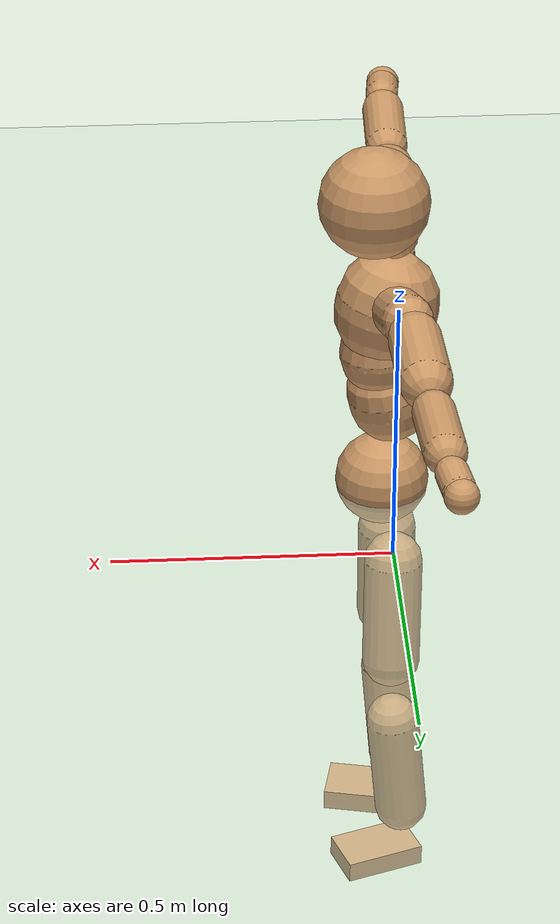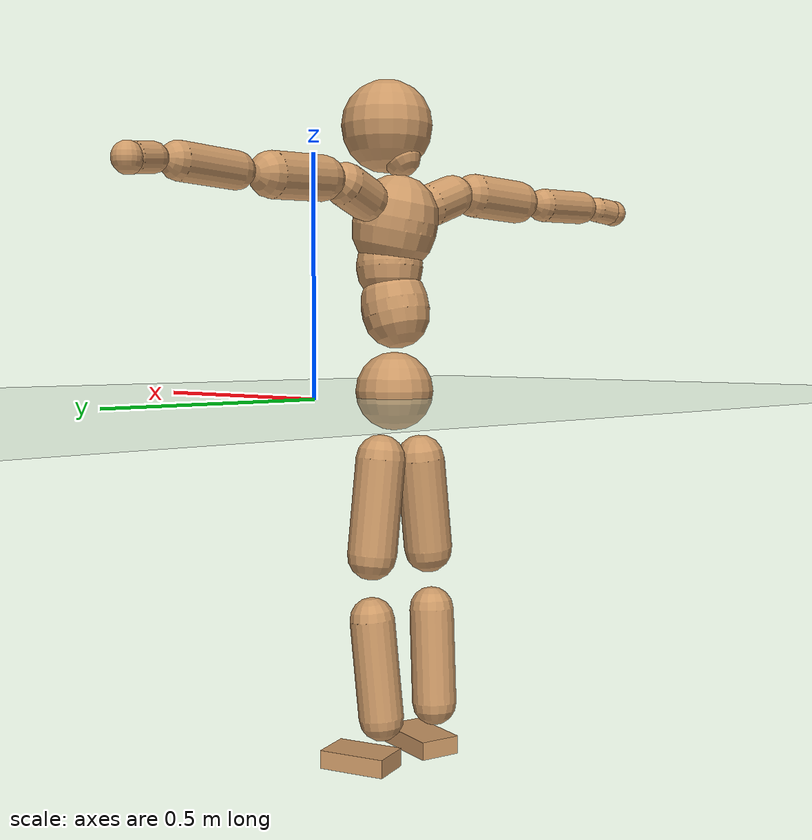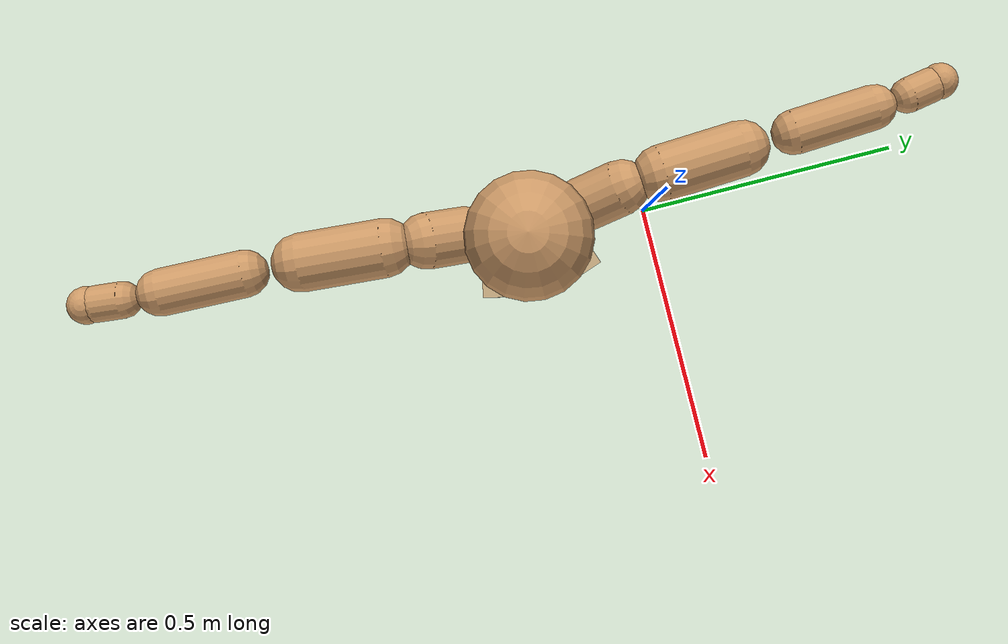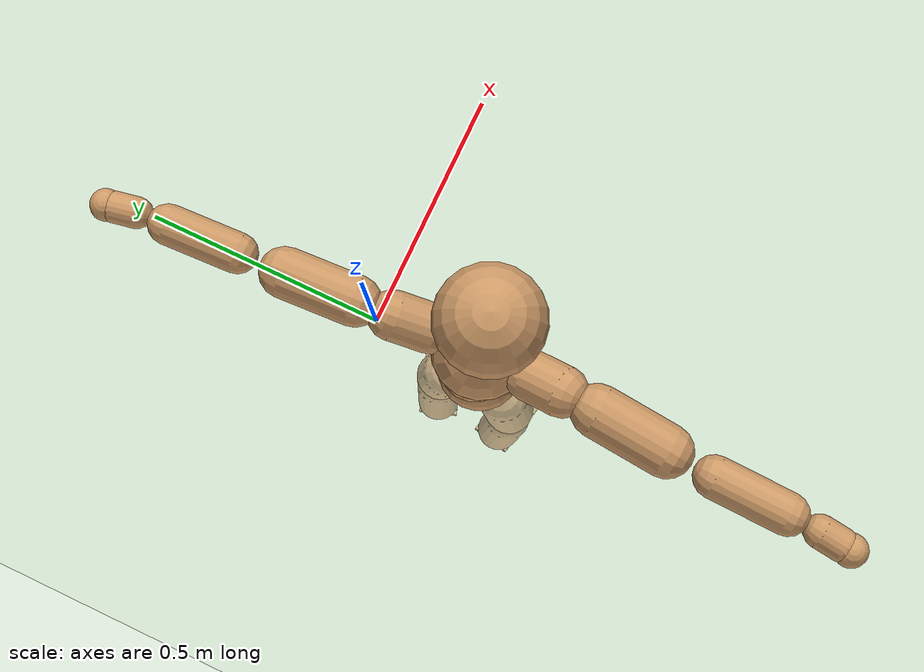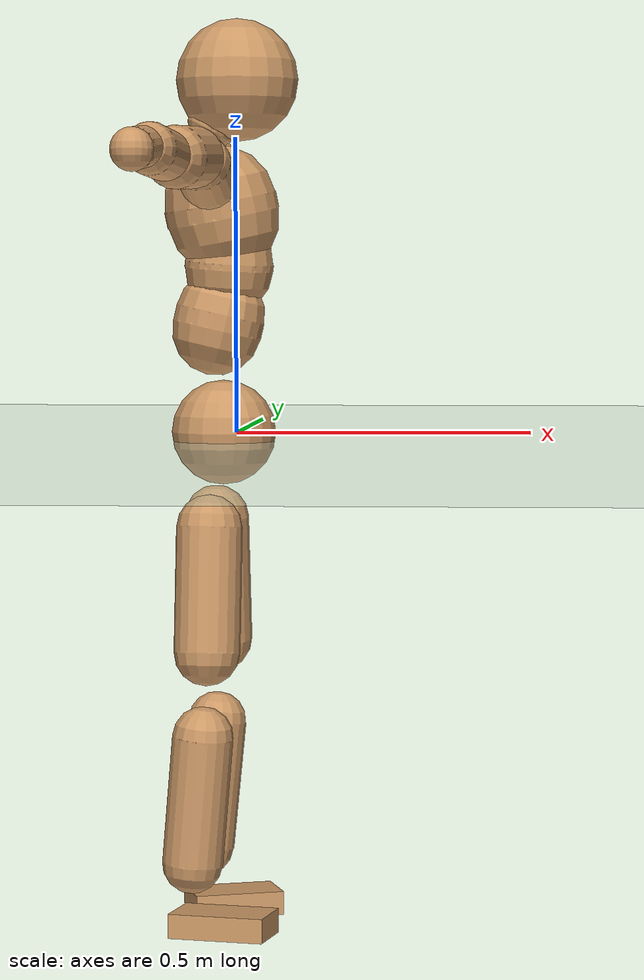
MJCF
<mujoco model="humanoid">
  <compiler coordinate="local" angle="radian"/>
  <default>
    <joint damping="0.0" armature="0.01" stiffness="0.0" limited="true"/>
    <geom conaffinity="1" condim="3" contype="7" margin="0.001" rgba="0.8 0.6 .4 1"/>
  </default>
  <asset>
    <texture type="skybox" builtin="gradient" rgb1=".4 .5 .6" rgb2="0 0 0" width="100" height="100"/>
    <texture builtin="flat" height="1278" mark="cross" markrgb="1 1 1" name="texgeom" random="0.01" rgb1="0.8 0.6 0.4" rgb2="0.8 0.6 0.4" type="cube" width="127"/>
    <texture builtin="checker" height="100" name="texplane" rgb1="0 0 0" rgb2="0.8 0.8 0.8" type="2d" width="100"/>
    <material name="MatPlane" reflectance="0.5" shininess="1" specular="1" texrepeat="60 60" texture="texplane"/>
    <material name="geom" texture="texgeom" texuniform="true"/>
  </asset>
  <worldbody>
    <light cutoff="100" diffuse="1 1 1" dir="-0 0 -1.3" directional="true" exponent="1" pos="0 0 1.3" specular=".1 .1 .1"/>
    <geom conaffinity="1" condim="3" name="floor" pos="0 0 0" rgba="0.8 0.9 0.8 1" size="100 100 .2" type="plane" material="MatPlane"/>
    <body name="Pelvis" pos="0.0016 -0.2292 0.0125">
      <freejoint name="Pelvis"/>
      <geom type="sphere" contype="1" conaffinity="1" density="500" size="0.0850" pos="0.0000 0.0000 0.0000" name="Pelvis"/>
      <body name="L_Hip" pos="-0.02 0.0526 -0.0759">
        <joint name="L_Hip_x" type="hinge" pos="0 0 0" axis="1 0 0" stiffness="800" damping="80" armature="0.02" range="-180.0000 180.0000"/>
        <joint name="L_Hip_y" type="hinge" pos="0 0 0" axis="0 1 0" stiffness="800" damping="80" armature="0.02" range="-180.0000 180.0000"/>
        <joint name="L_Hip_z" type="hinge" pos="0 0 0" axis="0 0 1" stiffness="800" damping="80" armature="0.02" range="-180.0000 180.0000"/>
        <geom type="capsule" contype="1" conaffinity="1" density="500" fromto="0.0009 0.0075 -0.0681 0.0038 0.0300 -0.2725" size="0.0534" name="L_Hip"/>
        <body name="L_Knee" pos="0.0047 0.0375 -0.3406">
          <joint name="L_Knee_x" type="hinge" pos="0 0 0" axis="1 0 0" stiffness="800" damping="80" armature="0.02" range="-180.0000 180.0000"/>
          <joint name="L_Knee_y" type="hinge" pos="0 0 0" axis="0 1 0" stiffness="800" damping="80" armature="0.02" range="-180.0000 180.0000"/>
          <joint name="L_Knee_z" type="hinge" pos="0 0 0" axis="0 0 1" stiffness="800" damping="80" armature="0.02" range="-180.0000 180.0000"/>
          <geom type="capsule" contype="1" conaffinity="1" density="500" fromto="-0.0067 -0.0023 -0.0700 -0.0269 -0.0093 -0.2800" size="0.0486" name="L_Knee"/>
          <body name="L_Ankle" pos="-0.0336 -0.0116 -0.35">
            <joint name="L_Ankle_x" type="hinge" pos="0 0 0" axis="1 0 0" stiffness="800" damping="80" armature="0.02" range="-180.0000 180.0000"/>
            <joint name="L_Ankle_y" type="hinge" pos="0 0 0" axis="0 1 0" stiffness="800" damping="80" armature="0.02" range="-180.0000 180.0000"/>
            <joint name="L_Ankle_z" type="hinge" pos="0 0 0" axis="0 0 1" stiffness="800" damping="80" armature="0.02" range="-180.0000 180.0000"/>
            <geom type="box" contype="1" conaffinity="1" density="500" pos="0.0533 0.0185 -0.0255" size="0.0743 0.0459 0.0197" quat="0.9861 0.0000 0.0000 0.1661" name="L_Ankle"/>
            <body name="L_Toe" pos="0.1066 0.037 -0.0509">
              <joint name="L_Toe_x" type="hinge" pos="0 0 0" axis="1 0 0" stiffness="500" damping="50" armature="0.02" range="-180.0000 180.0000"/>
              <joint name="L_Toe_y" type="hinge" pos="0 0 0" axis="0 1 0" stiffness="500" damping="50" armature="0.02" range="-180.0000 180.0000"/>
              <joint name="L_Toe_z" type="hinge" pos="0 0 0" axis="0 0 1" stiffness="500" damping="50" armature="0.02" range="-180.0000 180.0000"/>
              <geom type="box" contype="1" conaffinity="1" density="500" pos="0.0000 0.0000 0.0256" size="0.001 0.0022 0.001" quat="0.9852 0.0000 0.0000 0.1714" name="L_Toe"/>
            </body>
          </body>
        </body>
      </body>
      <body name="R_Hip" pos="-0.0168 -0.0554 -0.0837">
        <joint name="R_Hip_x" type="hinge" pos="0 0 0" axis="1 0 0" stiffness="800" damping="80" armature="0.02" range="-180.0000 180.0000"/>
        <joint name="R_Hip_y" type="hinge" pos="0 0 0" axis="0 1 0" stiffness="800" damping="80" armature="0.02" range="-180.0000 180.0000"/>
        <joint name="R_Hip_z" type="hinge" pos="0 0 0" axis="0 0 1" stiffness="800" damping="80" armature="0.02" range="-180.0000 180.0000"/>
        <geom type="capsule" contype="1" conaffinity="1" density="500" fromto="-0.0008 -0.0076 -0.0671 -0.0030 -0.0304 -0.2683" size="0.0532" name="R_Hip"/>
        <body name="R_Knee" pos="-0.0038 -0.0379 -0.3353">
          <joint name="R_Knee_x" type="hinge" pos="0 0 0" axis="1 0 0" stiffness="800" damping="80" armature="0.02" range="-180.0000 180.0000"/>
          <joint name="R_Knee_y" type="hinge" pos="0 0 0" axis="0 1 0" stiffness="800" damping="80" armature="0.02" range="-180.0000 180.0000"/>
          <joint name="R_Knee_z" type="hinge" pos="0 0 0" axis="0 0 1" stiffness="800" damping="80" armature="0.02" range="-180.0000 180.0000"/>
          <geom type="capsule" contype="1" conaffinity="1" density="500" fromto="-0.0060 0.0032 -0.0689 -0.0241 0.0128 -0.2755" size="0.0494" name="R_Knee"/>
          <body name="R_Ankle" pos="-0.0301 0.0159 -0.3444">
            <joint name="R_Ankle_x" type="hinge" pos="0 0 0" axis="1 0 0" stiffness="800" damping="80" armature="0.02" range="-180.0000 180.0000"/>
            <joint name="R_Ankle_y" type="hinge" pos="0 0 0" axis="0 1 0" stiffness="800" damping="80" armature="0.02" range="-180.0000 180.0000"/>
            <joint name="R_Ankle_z" type="hinge" pos="0 0 0" axis="0 0 1" stiffness="800" damping="80" armature="0.02" range="-180.0000 180.0000"/>
            <geom type="box" contype="1" conaffinity="1" density="500" pos="0.0567 -0.0121 -0.0277" size="0.079 0.0467 0.0198" quat="0.9945 0.0000 0.0000 -0.1052" name="R_Ankle"/>
            <body name="R_Toe" pos="0.1135 -0.0243 -0.0553">
              <joint name="R_Toe_x" type="hinge" pos="0 0 0" axis="1 0 0" stiffness="500" damping="50" armature="0.02" range="-180.0000 180.0000"/>
              <joint name="R_Toe_y" type="hinge" pos="0 0 0" axis="0 1 0" stiffness="500" damping="50" armature="0.02" range="-180.0000 180.0000"/>
              <joint name="R_Toe_z" type="hinge" pos="0 0 0" axis="0 0 1" stiffness="500" damping="50" armature="0.02" range="-180.0000 180.0000"/>
              <geom type="box" contype="1" conaffinity="1" density="500" pos="0.0000 0.0000 0.0298" size="0.0009 0.0023 0.0011" quat="0.9955 0.0000 0.0000 -0.0951" name="R_Toe"/>
            </body>
          </body>
        </body>
      </body>
      <body name="Torso" pos="-0.0238 0.0035 0.1134">
        <joint name="Torso_x" type="hinge" pos="0 0 0" axis="1 0 0" stiffness="1000" damping="100" armature="0.02" range="-180.0000 180.0000"/>
        <joint name="Torso_y" type="hinge" pos="0 0 0" axis="0 1 0" stiffness="1000" damping="100" armature="0.02" range="-180.0000 180.0000"/>
        <joint name="Torso_z" type="hinge" pos="0 0 0" axis="0 0 1" stiffness="1000" damping="100" armature="0.02" range="-180.0000 180.0000"/>
        <geom type="capsule" contype="1" conaffinity="1" density="500" fromto="0.0184 0.0025 0.0781 0.0123 0.0017 0.0521" size="0.0734" name="Torso"/>
        <body name="Spine" pos="0.0307 0.0042 0.1302">
          <joint name="Spine_x" type="hinge" pos="0 0 0" axis="1 0 0" stiffness="1000" damping="100" armature="0.02" range="-180.0000 180.0000"/>
          <joint name="Spine_y" type="hinge" pos="0 0 0" axis="0 1 0" stiffness="1000" damping="100" armature="0.02" range="-180.0000 180.0000"/>
          <joint name="Spine_z" type="hinge" pos="0 0 0" axis="0 0 1" stiffness="1000" damping="100" armature="0.02" range="-180.0000 180.0000"/>
          <geom type="capsule" contype="1" conaffinity="1" density="500" fromto="0.0021 -0.0015 0.0311 0.0014 -0.0010 0.0207" size="0.0723" name="Spine"/>
          <body name="Chest" pos="0.0034 -0.0025 0.0518">
            <joint name="Chest_x" type="hinge" pos="0 0 0" axis="1 0 0" stiffness="1000" damping="100" armature="0.02" range="-180.0000 180.0000"/>
            <joint name="Chest_y" type="hinge" pos="0 0 0" axis="0 1 0" stiffness="1000" damping="100" armature="0.02" range="-180.0000 180.0000"/>
            <joint name="Chest_z" type="hinge" pos="0 0 0" axis="0 0 1" stiffness="1000" damping="100" armature="0.02" range="-180.0000 180.0000"/>
            <geom type="capsule" contype="1" conaffinity="1" density="500" fromto="-0.0152 -0.0057 0.0781 -0.0101 -0.0038 0.0520" size="0.0919" name="Chest"/>
            <body name="Neck" pos="-0.0338 -0.0135 0.1886">
              <joint name="Neck_x" type="hinge" pos="0 0 0" axis="1 0 0" stiffness="500" damping="50" armature="0.02" range="-180.0000 180.0000"/>
              <joint name="Neck_y" type="hinge" pos="0 0 0" axis="0 1 0" stiffness="500" damping="50" armature="0.02" range="-180.0000 180.0000"/>
              <joint name="Neck_z" type="hinge" pos="0 0 0" axis="0 0 1" stiffness="500" damping="50" armature="0.02" range="-180.0000 180.0000"/>
              <geom type="capsule" contype="1" conaffinity="1" density="500" fromto="0.0093 0.0016 0.0172 0.0374 0.0065 0.0687" size="0.0423" name="Neck"/>
              <body name="Head" pos="0.0467 0.0081 0.0859">
                <joint name="Head_x" type="hinge" pos="0 0 0" axis="1 0 0" stiffness="500" damping="50" armature="0.02" range="-180.0000 180.0000"/>
                <joint name="Head_y" type="hinge" pos="0 0 0" axis="0 1 0" stiffness="500" damping="50" armature="0.02" range="-180.0000 180.0000"/>
                <joint name="Head_z" type="hinge" pos="0 0 0" axis="0 0 1" stiffness="500" damping="50" armature="0.02" range="-180.0000 180.0000"/>
                <geom type="sphere" contype="1" conaffinity="1" density="500" size="0.0991" pos="0.0000 0.0000 0.0000" name="Head"/>
              </body>
            </body>
            <body name="L_Thorax" pos="-0.0199 0.0663 0.1002">
              <joint name="L_Thorax_x" type="hinge" pos="0 0 0" axis="1 0 0" stiffness="500" damping="50" armature="0.02" range="-180.0000 180.0000"/>
              <joint name="L_Thorax_y" type="hinge" pos="0 0 0" axis="0 1 0" stiffness="500" damping="50" armature="0.02" range="-180.0000 180.0000"/>
              <joint name="L_Thorax_z" type="hinge" pos="0 0 0" axis="0 0 1" stiffness="500" damping="50" armature="0.02" range="-180.0000 180.0000"/>
              <geom type="capsule" contype="1" conaffinity="1" density="500" fromto="-0.0034 0.0230 0.0081 -0.0138 0.0918 0.0323" size="0.0457" name="L_Thorax"/>
              <body name="L_Shoulder" pos="-0.0172 0.1148 0.0404">
                <joint name="L_Shoulder_x" type="hinge" pos="0 0 0" axis="1 0 0" stiffness="500" damping="50" armature="0.02" range="-720.0000 720.0000"/>
                <joint name="L_Shoulder_y" type="hinge" pos="0 0 0" axis="0 1 0" stiffness="500" damping="50" armature="0.02" range="-720.0000 720.0000"/>
                <joint name="L_Shoulder_z" type="hinge" pos="0 0 0" axis="0 0 1" stiffness="500" damping="50" armature="0.02" range="-720.0000 720.0000"/>
                <geom type="capsule" contype="1" conaffinity="1" density="500" fromto="-0.0023 0.0450 -0.0020 -0.0093 0.1801 -0.0079" size="0.0465" name="L_Shoulder"/>
                <body name="L_Elbow" pos="-0.0116 0.2251 -0.0099">
                  <joint name="L_Elbow_x" type="hinge" pos="0 0 0" axis="1 0 0" stiffness="500" damping="50" armature="0.02" range="-720.0000 720.0000"/>
                  <joint name="L_Elbow_y" type="hinge" pos="0 0 0" axis="0 1 0" stiffness="500" damping="50" armature="0.02" range="-720.0000 720.0000"/>
                  <joint name="L_Elbow_z" type="hinge" pos="0 0 0" axis="0 0 1" stiffness="500" damping="50" armature="0.02" range="-720.0000 720.0000"/>
                  <geom type="capsule" contype="1" conaffinity="1" density="500" fromto="-0.0022 0.0443 0.0013 -0.0089 0.1772 0.0052" size="0.037" name="L_Elbow"/>
                  <body name="L_Wrist" pos="-0.0112 0.2215 0.0065">
                    <joint name="L_Wrist_x" type="hinge" pos="0 0 0" axis="1 0 0" stiffness="300" damping="30" armature="0.02" range="-180.0000 180.0000"/>
                    <joint name="L_Wrist_y" type="hinge" pos="0 0 0" axis="0 1 0" stiffness="300" damping="30" armature="0.02" range="-180.0000 180.0000"/>
                    <joint name="L_Wrist_z" type="hinge" pos="0 0 0" axis="0 0 1" stiffness="300" damping="30" armature="0.02" range="-180.0000 180.0000"/>
                    <geom type="capsule" contype="1" conaffinity="1" density="500" fromto="-0.0025 0.0143 -0.0017 -0.0101 0.0574 -0.0069" size="0.0287" name="L_Wrist"/>
                    <body name="L_Hand" pos="-0.0126 0.0717 -0.0087">
                      <joint name="L_Hand_x" type="hinge" pos="0 0 0" axis="1 0 0" stiffness="300" damping="30" armature="0.02" range="-180.0000 180.0000"/>
                      <joint name="L_Hand_y" type="hinge" pos="0 0 0" axis="0 1 0" stiffness="300" damping="30" armature="0.02" range="-180.0000 180.0000"/>
                      <joint name="L_Hand_z" type="hinge" pos="0 0 0" axis="0 0 1" stiffness="300" damping="30" armature="0.02" range="-180.0000 180.0000"/>
                      <geom type="sphere" contype="1" conaffinity="1" density="500" size="0.0297" pos="0.0000 0.0000 0.0000" name="L_Hand"/>
                    </body>
                  </body>
                </body>
              </body>
            </body>
            <body name="R_Thorax" pos="-0.0222 -0.0811 0.1015">
              <joint name="R_Thorax_x" type="hinge" pos="0 0 0" axis="1 0 0" stiffness="500" damping="50" armature="0.02" range="-180.0000 180.0000"/>
              <joint name="R_Thorax_y" type="hinge" pos="0 0 0" axis="0 1 0" stiffness="500" damping="50" armature="0.02" range="-180.0000 180.0000"/>
              <joint name="R_Thorax_z" type="hinge" pos="0 0 0" axis="0 0 1" stiffness="500" damping="50" armature="0.02" range="-180.0000 180.0000"/>
              <geom type="capsule" contype="1" conaffinity="1" density="500" fromto="-0.0015 -0.0215 0.0084 -0.0058 -0.0859 0.0334" size="0.0465" name="R_Thorax"/>
              <body name="R_Shoulder" pos="-0.0073 -0.1074 0.0418">
                <joint name="R_Shoulder_x" type="hinge" pos="0 0 0" axis="1 0 0" stiffness="500" damping="50" armature="0.02" range="-720.0000 720.0000"/>
                <joint name="R_Shoulder_y" type="hinge" pos="0 0 0" axis="0 1 0" stiffness="500" damping="50" armature="0.02" range="-720.0000 720.0000"/>
                <joint name="R_Shoulder_z" type="hinge" pos="0 0 0" axis="0 0 1" stiffness="500" damping="50" armature="0.02" range="-720.0000 720.0000"/>
                <geom type="capsule" contype="1" conaffinity="1" density="500" fromto="-0.0037 -0.0457 -0.0018 -0.0149 -0.1827 -0.0070" size="0.0484" name="R_Shoulder"/>
                <body name="R_Elbow" pos="-0.0187 -0.2284 -0.0088">
                  <joint name="R_Elbow_x" type="hinge" pos="0 0 0" axis="1 0 0" stiffness="500" damping="50" armature="0.02" range="-720.0000 720.0000"/>
                  <joint name="R_Elbow_y" type="hinge" pos="0 0 0" axis="0 1 0" stiffness="500" damping="50" armature="0.02" range="-720.0000 720.0000"/>
                  <joint name="R_Elbow_z" type="hinge" pos="0 0 0" axis="0 0 1" stiffness="500" damping="50" armature="0.02" range="-720.0000 720.0000"/>
                  <geom type="capsule" contype="1" conaffinity="1" density="500" fromto="-0.0014 -0.0462 0.0013 -0.0056 -0.1847 0.0050" size="0.0388" name="R_Elbow"/>
                  <body name="R_Wrist" pos="-0.0071 -0.2309 0.0063">
                    <joint name="R_Wrist_x" type="hinge" pos="0 0 0" axis="1 0 0" stiffness="300" damping="30" armature="0.02" range="-180.0000 180.0000"/>
                    <joint name="R_Wrist_y" type="hinge" pos="0 0 0" axis="0 1 0" stiffness="300" damping="30" armature="0.02" range="-180.0000 180.0000"/>
                    <joint name="R_Wrist_z" type="hinge" pos="0 0 0" axis="0 0 1" stiffness="300" damping="30" armature="0.02" range="-180.0000 180.0000"/>
                    <geom type="capsule" contype="1" conaffinity="1" density="500" fromto="-0.0017 -0.0153 -0.0014 -0.0066 -0.0610 -0.0057" size="0.0304" name="R_Wrist"/>
                    <body name="R_Hand" pos="-0.0083 -0.0763 -0.0072">
                      <joint name="R_Hand_x" type="hinge" pos="0 0 0" axis="1 0 0" stiffness="300" damping="30" armature="0.02" range="-180.0000 180.0000"/>
                      <joint name="R_Hand_y" type="hinge" pos="0 0 0" axis="0 1 0" stiffness="300" damping="30" armature="0.02" range="-180.0000 180.0000"/>
                      <joint name="R_Hand_z" type="hinge" pos="0 0 0" axis="0 0 1" stiffness="300" damping="30" armature="0.02" range="-180.0000 180.0000"/>
                      <geom type="sphere" contype="1" conaffinity="1" density="500" size="0.0312" pos="0.0000 0.0000 0.0000" name="R_Hand"/>
                    </body>
                  </body>
                </body>
              </body>
            </body>
          </body>
        </body>
      </body>
    </body>
  </worldbody>
  <actuator>
    <motor name="L_Hip_x" joint="L_Hip_x" gear="500"/>
    <motor name="L_Hip_y" joint="L_Hip_y" gear="500"/>
    <motor name="L_Hip_z" joint="L_Hip_z" gear="500"/>
    <motor name="L_Knee_x" joint="L_Knee_x" gear="500"/>
    <motor name="L_Knee_y" joint="L_Knee_y" gear="500"/>
    <motor name="L_Knee_z" joint="L_Knee_z" gear="500"/>
    <motor name="L_Ankle_x" joint="L_Ankle_x" gear="500"/>
    <motor name="L_Ankle_y" joint="L_Ankle_y" gear="500"/>
    <motor name="L_Ankle_z" joint="L_Ankle_z" gear="500"/>
    <motor name="L_Toe_x" joint="L_Toe_x" gear="500"/>
    <motor name="L_Toe_y" joint="L_Toe_y" gear="500"/>
    <motor name="L_Toe_z" joint="L_Toe_z" gear="500"/>
    <motor name="R_Hip_x" joint="R_Hip_x" gear="500"/>
    <motor name="R_Hip_y" joint="R_Hip_y" gear="500"/>
    <motor name="R_Hip_z" joint="R_Hip_z" gear="500"/>
    <motor name="R_Knee_x" joint="R_Knee_x" gear="500"/>
    <motor name="R_Knee_y" joint="R_Knee_y" gear="500"/>
    <motor name="R_Knee_z" joint="R_Knee_z" gear="500"/>
    <motor name="R_Ankle_x" joint="R_Ankle_x" gear="500"/>
    <motor name="R_Ankle_y" joint="R_Ankle_y" gear="500"/>
    <motor name="R_Ankle_z" joint="R_Ankle_z" gear="500"/>
    <motor name="R_Toe_x" joint="R_Toe_x" gear="500"/>
    <motor name="R_Toe_y" joint="R_Toe_y" gear="500"/>
    <motor name="R_Toe_z" joint="R_Toe_z" gear="500"/>
    <motor name="Torso_x" joint="Torso_x" gear="500"/>
    <motor name="Torso_y" joint="Torso_y" gear="500"/>
    <motor name="Torso_z" joint="Torso_z" gear="500"/>
    <motor name="Spine_x" joint="Spine_x" gear="500"/>
    <motor name="Spine_y" joint="Spine_y" gear="500"/>
    <motor name="Spine_z" joint="Spine_z" gear="500"/>
    <motor name="Chest_x" joint="Chest_x" gear="500"/>
    <motor name="Chest_y" joint="Chest_y" gear="500"/>
    <motor name="Chest_z" joint="Chest_z" gear="500"/>
    <motor name="Neck_x" joint="Neck_x" gear="500"/>
    <motor name="Neck_y" joint="Neck_y" gear="500"/>
    <motor name="Neck_z" joint="Neck_z" gear="500"/>
    <motor name="Head_x" joint="Head_x" gear="500"/>
    <motor name="Head_y" joint="Head_y" gear="500"/>
    <motor name="Head_z" joint="Head_z" gear="500"/>
    <motor name="L_Thorax_x" joint="L_Thorax_x" gear="500"/>
    <motor name="L_Thorax_y" joint="L_Thorax_y" gear="500"/>
    <motor name="L_Thorax_z" joint="L_Thorax_z" gear="500"/>
    <motor name="L_Shoulder_x" joint="L_Shoulder_x" gear="500"/>
    <motor name="L_Shoulder_y" joint="L_Shoulder_y" gear="500"/>
    <motor name="L_Shoulder_z" joint="L_Shoulder_z" gear="500"/>
    <motor name="L_Elbow_x" joint="L_Elbow_x" gear="500"/>
    <motor name="L_Elbow_y" joint="L_Elbow_y" gear="500"/>
    <motor name="L_Elbow_z" joint="L_Elbow_z" gear="500"/>
    <motor name="L_Wrist_x" joint="L_Wrist_x" gear="500"/>
    <motor name="L_Wrist_y" joint="L_Wrist_y" gear="500"/>
    <motor name="L_Wrist_z" joint="L_Wrist_z" gear="500"/>
    <motor name="L_Hand_x" joint="L_Hand_x" gear="500"/>
    <motor name="L_Hand_y" joint="L_Hand_y" gear="500"/>
    <motor name="L_Hand_z" joint="L_Hand_z" gear="500"/>
    <motor name="R_Thorax_x" joint="R_Thorax_x" gear="500"/>
    <motor name="R_Thorax_y" joint="R_Thorax_y" gear="500"/>
    <motor name="R_Thorax_z" joint="R_Thorax_z" gear="500"/>
    <motor name="R_Shoulder_x" joint="R_Shoulder_x" gear="500"/>
    <motor name="R_Shoulder_y" joint="R_Shoulder_y" gear="500"/>
    <motor name="R_Shoulder_z" joint="R_Shoulder_z" gear="500"/>
    <motor name="R_Elbow_x" joint="R_Elbow_x" gear="500"/>
    <motor name="R_Elbow_y" joint="R_Elbow_y" gear="500"/>
    <motor name="R_Elbow_z" joint="R_Elbow_z" gear="500"/>
    <motor name="R_Wrist_x" joint="R_Wrist_x" gear="500"/>
    <motor name="R_Wrist_y" joint="R_Wrist_y" gear="500"/>
    <motor name="R_Wrist_z" joint="R_Wrist_z" gear="500"/>
    <motor name="R_Hand_x" joint="R_Hand_x" gear="500"/>
    <motor name="R_Hand_y" joint="R_Hand_y" gear="500"/>
    <motor name="R_Hand_z" joint="R_Hand_z" gear="500"/>
  </actuator>
  <contact>
    <exclude body1="Torso" body2="Chest"/>
    <exclude body1="Head" body2="Chest"/>
    <exclude body1="R_Knee" body2="R_Toe"/>
    <exclude body1="R_Knee" body2="L_Ankle"/>
    <exclude body1="R_Knee" body2="L_Toe"/>
    <exclude body1="L_Knee" body2="L_Toe"/>
    <exclude body1="L_Knee" body2="R_Ankle"/>
    <exclude body1="L_Knee" body2="R_Toe"/>
    <exclude body1="L_Shoulder" body2="Chest"/>
    <exclude body1="R_Shoulder" body2="Chest"/>
  </contact>
  <sensor/>
  <size njmax="700" nconmax="700"/>
</mujoco>
